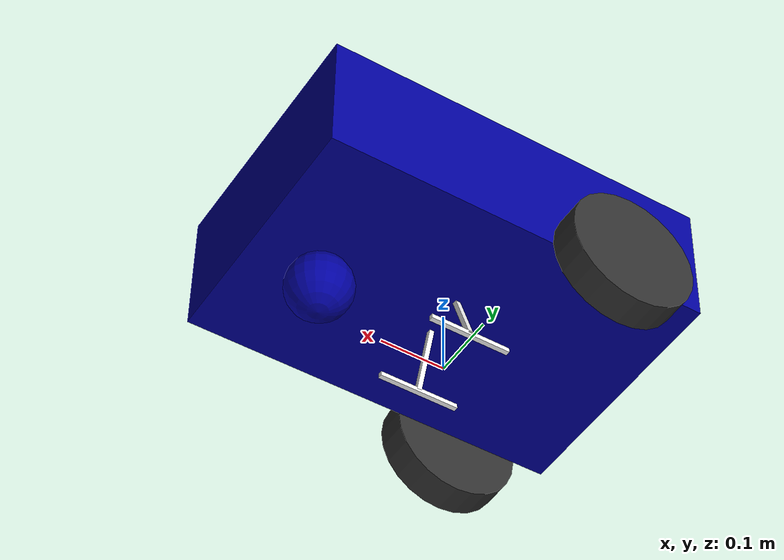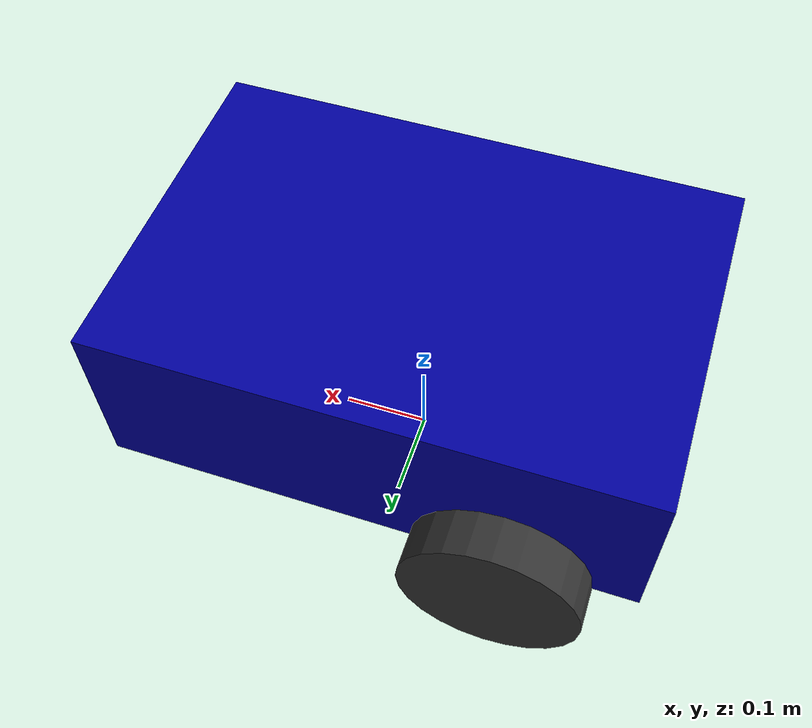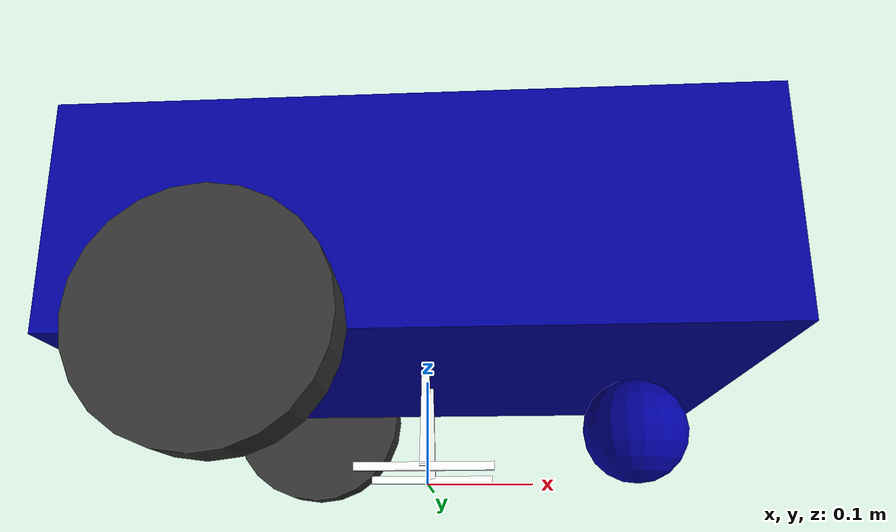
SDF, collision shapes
<?xml version="1.0"?>
<sdf version='1.9'>
  <model name='flight_robot'>

    <include merge='true'>
      <uri>model://x500_base</uri>
    </include>

    <!-- Rename the merged base_link to avoid conflicts -->
    <!-- The x500_base's base_link is now part of flight_robot -->

    <!-- Your ground robot base -->
    <link name='robot_base_footprint'>  <!-- Renamed to avoid conflict -->
      <pose>0 0 0 0 0 0</pose>  <!-- Position robot base at origin -->
      <inertial>
        <mass>6</mass>
        <inertia>
          <ixx>0.689417</ixx>
          <ixy>0</ixy>
          <ixz>0.025</ixz>
          <iyy>0.92275</iyy>
          <iyz>0</iyz>
          <izz>0.370667</izz>
        </inertia>
      </inertial>

      <!-- Base collision -->
      <collision name='base_collision'>
        <pose>0 0 0.2 0 0 0</pose>
        <geometry>
          <box>
            <size>0.6 0.4 0.2</size>
          </box>
        </geometry>
      </collision>

      <!-- Caster collision -->
      <collision name='caster_collision'>
        <pose>0.2 0 0.05 0 0 0</pose>
        <geometry>
          <sphere>
            <radius>0.05</radius>
          </sphere>
        </geometry>
        <surface>
          <friction>
            <ode>
              <mu>0.1</mu>
              <mu2>0.1</mu2>
            </ode>
          </friction>
        </surface>
      </collision>

      <!-- Visuals -->
      <visual name='base_visual'>
        <pose>0 0 0.2 0 0 0</pose>
        <geometry>
          <box>
            <size>0.6 0.4 0.2</size>
          </box>
        </geometry>
        <material>
          <diffuse>0 0 0.625 1</diffuse>
        </material>
      </visual>

      <visual name='caster_visual'>
        <pose>0.2 0 0.05 0 0 0</pose>
        <geometry>
          <sphere>
            <radius>0.05</radius>
          </sphere>
        </geometry>
        <material>
          <diffuse>0.625 0.625 0.625 1</diffuse>
        </material>
      </visual>
    </link>

    <!-- Left wheel joint and link -->
    <joint name='left_wheel_joint' type='revolute'>
      <parent>robot_base_footprint</parent>
      <child>left_wheel</child>
      <axis>
        <xyz>0 1 0</xyz>
        <limit>
          <lower>-1e16</lower>
          <upper>1e16</upper>
        </limit>
      </axis>
    </joint>

    <link name='left_wheel'>
      <pose relative_to='robot_base_footprint'>-0.15 0.225 0.1 1.5708 0 0</pose>
      <inertial>
        <mass>1</mass>
        <inertia>
          <ixx>0.010833</ixx>
          <iyy>0.010833</iyy>
          <izz>0.02</izz>
          <ixy>0</ixy>
          <ixz>0</ixz>
          <iyz>0</iyz>
        </inertia>
      </inertial>
      <collision name='collision'>
        <geometry>
          <cylinder>
            <length>0.05</length>
            <radius>0.1</radius>
          </cylinder>
        </geometry>
      </collision>
      <visual name='visual'>
        <geometry>
          <cylinder>
            <length>0.05</length>
            <radius>0.1</radius>
          </cylinder>
        </geometry>
        <material>
          <diffuse>0.2 0.2 0.2 1</diffuse>
        </material>
      </visual>
    </link>

    <!-- Right wheel joint and link -->
    <joint name='right_wheel_joint' type='revolute'>
      <parent>robot_base_footprint</parent>
      <child>right_wheel</child>
      <axis>
        <xyz>0 1 0</xyz>
        <limit>
          <lower>-1e16</lower>
          <upper>1e16</upper>
        </limit>
      </axis>
    </joint>

    <link name='right_wheel'>
      <pose relative_to='robot_base_footprint'>-0.15 -0.225 0.1 1.5708 0 0</pose>
      <inertial>
        <mass>1</mass>
        <inertia>
          <ixx>0.010833</ixx>
          <iyy>0.010833</iyy>
          <izz>0.02</izz>
          <ixy>0</ixy>
          <ixz>0</ixz>
          <iyz>0</iyz>
        </inertia>
      </inertial>
      <collision name='collision'>
        <geometry>
          <cylinder>
            <length>0.05</length>
            <radius>0.1</radius>
          </cylinder>
        </geometry>
      </collision>
      <visual name='visual'>
        <geometry>
          <cylinder>
            <length>0.05</length>
            <radius>0.1</radius>
          </cylinder>
        </geometry>
        <material>
          <diffuse>0.2 0.2 0.2 1</diffuse>
        </material>
      </visual>
    </link>

    <!-- Attach drone (x500_base's base_link) to robot base -->
    <joint name="robot_to_drone_joint" type="fixed">
      <parent>robot_base_footprint</parent>
      <child>base_link</child>  <!-- This is x500_base's base_link from merge -->
      <pose>0 0 0.4 0 0 0</pose>  <!-- Position drone 0.4m above robot base -->
    </joint>

    <!-- Diff drive for the ground robot -->
    <plugin filename="gz-sim-diff-drive-system" name="gz::sim::systems::DiffDrive">
      <left_joint>left_wheel_joint</left_joint>
      <right_joint>right_wheel_joint</right_joint>
      <wheel_separation>0.45</wheel_separation>
      <wheel_radius>0.1</wheel_radius>
      <odom_publish_frequency>50</odom_publish_frequency>
      <topic>cmd_vel</topic>
    </plugin>

    <!-- Keep x500's motor plugins (they were merged in) -->

  </model>
</sdf>

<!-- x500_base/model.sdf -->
<sdf version='1.9'>
  <model name='x500_base'>
    <pose>0 0 0.12 0 0 0</pose>
    <self_collide>false</self_collide>
    <static>false</static>
    <link name="base_link">
      <inertial>
        <mass>1.0</mass>
        <inertia>
          <ixx>0.005416666666666667</ixx>
          <ixy>0</ixy>
          <ixz>0</ixz>
          <iyy>0.005416666666666667</iyy>
          <iyz>0</iyz>
          <izz>0.010000000000000002</izz>
        </inertia>
      </inertial>
      <gravity>true</gravity>
      <velocity_decay/>
      <visual name="base_link_visual">
        <pose>0 0 0.0125 0 0 3.141592654</pose>
        <geometry>
          <mesh>
            <scale>0.5 0.5 0.5</scale>
            <uri>model://x500_base/meshes/NXP-HGD-CF.dae</uri>
          </mesh>
        </geometry>
      </visual>
      <visual name="5010_motor_base_0">
        <pose>0.087 0.087 0.016 0 0 -0.45</pose>
        <geometry>
          <mesh>
            <scale>0.5 0.5 0.5</scale>
            <uri>model://x500_base/meshes/5010Base.dae</uri>
          </mesh>
        </geometry>
      </visual>
      <visual name="5010_motor_base_1">
        <pose>-0.087 0.087 0.016 0 0 -0.45</pose>
        <geometry>
          <mesh>
            <scale>0.5 0.5 0.5</scale>
            <uri>model://x500_base/meshes/5010Base.dae</uri>
          </mesh>
        </geometry>
      </visual>
      <visual name="5010_motor_base_2">
        <pose>0.087 -0.087 0.016 0 0 -0.45</pose>
        <geometry>
          <mesh>
            <scale>0.5 0.5 0.5</scale>
            <uri>model://x500_base/meshes/5010Base.dae</uri>
          </mesh>
        </geometry>
      </visual>
      <visual name="5010_motor_base_3">
        <pose>-0.087 -0.087 0.016 0 0 -0.45</pose>
        <geometry>
          <mesh>
            <scale>0.5 0.5 0.5</scale>
            <uri>model://x500_base/meshes/5010Base.dae</uri>
          </mesh>
        </geometry>
      </visual>
      <visual name="NXP_FMUK66_FRONT">
        <pose>0.0235 0.0005 0.0215 1 0 1.57</pose>
        <cast_shadows>false</cast_shadows>
        <geometry>
          <plane>
            <normal>0 0 1</normal>
            <size>0.0065 0.0035</size>
          </plane>
        </geometry>
        <material>
          <diffuse>1.0 1.0 1.0</diffuse>
          <specular>1.0 1.0 1.0</specular>
          <pbr>
            <metal>
              <albedo_map>model://x500_base/materials/textures/nxp.png</albedo_map>
            </metal>
          </pbr>
        </material>
      </visual>
      <visual name="NXP_FMUK66_TOP">
        <pose>-0.0115 0 0.02575 0 0 -1.57</pose>
        <cast_shadows>false</cast_shadows>
        <geometry>
          <plane>
            <normal>0 0 1</normal>
            <size>0.0065 0.0035</size>
          </plane>
        </geometry>
        <material>
          <diffuse>1.0 1.0 1.0</diffuse>
          <specular>1.0 1.0 1.0</specular>
          <pbr>
            <metal>
              <albedo_map>model://x500_base/materials/textures/nxp.png</albedo_map>
            </metal>
          </pbr>
        </material>
      </visual>
      <visual name="RDDRONE_FMUK66_TOP">
        <pose>-0.015 0 0.02575 0 0 -1.57</pose>
        <cast_shadows>false</cast_shadows>
        <geometry>
          <plane>
            <normal>0 0 1</normal>
            <size>0.016 0.0017</size>
          </plane>
        </geometry>
        <material>
          <diffuse>1.0 1.0 1.0</diffuse>
          <specular>1.0 1.0 1.0</specular>
          <pbr>
            <metal>
              <albedo_map>model://x500_base/materials/textures/rd.png</albedo_map>
            </metal>
          </pbr>
        </material>
      </visual>
      <collision name="base_link_collision_0">
        <pose>0 0 0.0035 0 0 0</pose>
        <geometry>
          <box>
            <size>0.17677669529663686 0.17677669529663686 0.025</size>
          </box>
        </geometry>
        <surface>
          <contact>
            <ode>
              <min_depth>0.001</min_depth>
              <max_vel>0</max_vel>
            </ode>
          </contact>
          <friction>
            <ode/>
          </friction>
        </surface>
      </collision>
      <collision name="base_link_collision_1">
        <pose>0 -0.049 -0.0615 -0.35 0 0</pose>
        <geometry>
          <box>
            <size>0.0075 0.0075 0.105</size>
          </box>
        </geometry>
        <surface>
          <contact>
            <ode>
              <min_depth>0.001</min_depth>
              <max_vel>0</max_vel>
            </ode>
          </contact>
          <friction>
            <ode/>
          </friction>
        </surface>
      </collision>
      <collision name="base_link_collision_2">
        <pose>0 0.049 -0.0615 0.35 0 0</pose>
        <geometry>
          <box>
            <size>0.0075 0.0075 0.105</size>
          </box>
        </geometry>
        <surface>
          <contact>
            <ode>
              <min_depth>0.001</min_depth>
              <max_vel>0</max_vel>
            </ode>
          </contact>
          <friction>
            <ode/>
          </friction>
        </surface>
      </collision>
      <collision name="base_link_collision_3">
        <pose>0 -0.066 -0.10975 0 0 0</pose>
        <geometry>
          <box>
            <size>0.125 0.0075 0.0075</size>
          </box>
        </geometry>
        <surface>
          <contact>
            <ode>
              <min_depth>0.001</min_depth>
              <max_vel>0</max_vel>
            </ode>
          </contact>
          <friction>
            <ode/>
          </friction>
        </surface>
      </collision>
      <collision name="base_link_collision_4">
        <pose>0 0.066 -0.10975 0 0 0</pose>
        <geometry>
          <box>
            <size>0.125 0.0075 0.0075</size>
          </box>
        </geometry>
        <surface>
          <contact>
            <ode>
              <min_depth>0.001</min_depth>
              <max_vel>0</max_vel>
            </ode>
          </contact>
          <friction>
            <ode/>
          </friction>
        </surface>
      </collision>
      <sensor name="air_pressure_sensor" type="air_pressure">
        <always_on>1</always_on>
        <update_rate>50</update_rate>
        <air_pressure>
          <pressure>
            <noise type="gaussian">
              <mean>0</mean>
              <stddev>0.01</stddev>
            </noise>
          </pressure>
        </air_pressure>
      </sensor>
      <sensor name="imu_sensor" type="imu">
        <always_on>1</always_on>
        <update_rate>250</update_rate>
        <imu>
          <angular_velocity>
            <x>
              <noise type="gaussian">
                <mean>0</mean>
                <stddev>0.00018665</stddev>
                <dynamic_bias_stddev>3.8785e-05</dynamic_bias_stddev>
                <dynamic_bias_correlation_time>1000</dynamic_bias_correlation_time>
              </noise>
            </x>
            <y>
              <noise type="gaussian">
                <mean>0</mean>
                <stddev>0.00018665</stddev>
                <dynamic_bias_stddev>3.8785e-05</dynamic_bias_stddev>
                <dynamic_bias_correlation_time>1000</dynamic_bias_correlation_time>
              </noise>
            </y>
            <z>
              <noise type="gaussian">
                <mean>0</mean>
                <stddev>0.00018665</stddev>
                <dynamic_bias_stddev>3.8785e-05</dynamic_bias_stddev>
                <dynamic_bias_correlation_time>1000</dynamic_bias_correlation_time>
              </noise>
            </z>
          </angular_velocity>
          <linear_acceleration>
            <x>
              <noise type="gaussian">
                <mean>0</mean>
                <stddev>0.00186</stddev>
                <dynamic_bias_stddev>0.006</dynamic_bias_stddev>
                <dynamic_bias_correlation_time>300</dynamic_bias_correlation_time>
              </noise>
            </x>
            <y>
              <noise type="gaussian">
                <mean>0</mean>
                <stddev>0.00186</stddev>
                <dynamic_bias_stddev>0.006</dynamic_bias_stddev>
                <dynamic_bias_correlation_time>300</dynamic_bias_correlation_time>
              </noise>
            </y>
            <z>
              <noise type="gaussian">
                <mean>0</mean>
                <stddev>0.00186</stddev>
                <dynamic_bias_stddev>0.006</dynamic_bias_stddev>
                <dynamic_bias_correlation_time>300</dynamic_bias_correlation_time>
              </noise>
            </z>
          </linear_acceleration>
        </imu>
      </sensor>
      <sensor name="navsat_sensor" type="navsat">
        <always_on>1</always_on>
        <update_rate>30</update_rate>
      </sensor>
    </link>
    <link name="rotor_0">
      <gravity>true</gravity>
      <self_collide>false</self_collide>
      <velocity_decay/>
      <pose>0.087 -0.087 0.03 0 0 0</pose>
      <inertial>
          <mass>0.008038461538461538</mass>
          <inertia>
            <ixx>9.616227620998331e-08</ixx>
            <iyy>6.528962922925001e-06</iyy>
            <izz>6.62464558678501e-06</izz>
          </inertia>
        </inertial>
      <visual name="rotor_0_visual">
        <pose>-0.011 -0.07319230769230769 -0.008 0 0 0</pose>
        <geometry>
          <mesh>
            <scale>0.4230769230769231 0.4230769230769231 0.4230769230769231</scale>
            <uri>model://x500_base/meshes/1345_prop_ccw.stl</uri>
          </mesh>
        </geometry>
        <material>
          <script>
            <name>Gazebo/DarkGrey</name>
            <uri>file://media/materials/scripts/gazebo.material</uri>
          </script>
        </material>
      </visual>
      <visual name="rotor_0_visual_motor_bell">
        <pose>0 0 -0.016 0 0 0</pose>
        <geometry>
          <mesh>
            <scale>0.5 0.5 0.5</scale>
            <uri>model://x500_base/meshes/5010Bell.dae</uri>
          </mesh>
        </geometry>
      </visual>
      <collision name="rotor_0_collision">
        <pose>0 0 0 0 0 0 </pose>
        <geometry>
          <box>
            <size>0.1396153846153846 0.008461538461538461 0.0004230769230769231</size>
          </box>
        </geometry>
        <surface>
          <contact>
            <ode>
              <min_depth>0.001</min_depth>
              <max_vel>0</max_vel>
            </ode>
          </contact>
          <friction>
            <ode/>
          </friction>
        </surface>
      </collision>
    </link>
    <joint name="rotor_0_joint" type="revolute">
      <parent>base_link</parent>
      <child>rotor_0</child>
      <axis>
        <xyz>0 0 1</xyz>
        <limit>
          <lower>-1e+16</lower>
          <upper>1e+16</upper>
        </limit>
        <dynamics>
          <spring_reference>0</spring_reference>
          <spring_stiffness>0</spring_stiffness>
        </dynamics>
      </axis>
    </joint>
    <link name="rotor_1">
      <gravity>true</gravity>
      <self_collide>false</self_collide>
      <velocity_decay/>
      <pose>-0.087 0.087 0.03 0 0 0</pose>
      <inertial>
          <mass>0.008038461538461538</mass>
          <inertia>
            <ixx>9.616227620998331e-08</ixx>
            <iyy>6.528962922925001e-06</iyy>
            <izz>6.62464558678501e-06</izz>
          </inertia>
        </inertial>
      <visual name="rotor_1_visual">
        <pose>-0.011 -0.07319230769230769 -0.008 0 0 0</pose>
        <geometry>
          <mesh>
            <scale>0.4230769230769231 0.4230769230769231 0.4230769230769231</scale>
            <uri>model://x500_base/meshes/1345_prop_ccw.stl</uri>
          </mesh>
        </geometry>
        <material>
          <script>
            <name>Gazebo/DarkGrey</name>
            <uri>file://media/materials/scripts/gazebo.material</uri>
          </script>
        </material>
      </visual>
      <visual name="rotor_1_visual_motor_top">
        <pose>0 0 -0.016 0 0 0</pose>
        <geometry>
          <mesh>
            <scale>0.5 0.5 0.5</scale>
            <uri>model://x500_base/meshes/5010Bell.dae</uri>
          </mesh>
        </geometry>
      </visual>
      <collision name="rotor_1_collision">
        <pose>0 0 0 0 0 0 </pose>
        <geometry>
          <box>
            <size>0.1396153846153846 0.008461538461538461 0.0004230769230769231</size>
          </box>
        </geometry>
        <surface>
          <contact>
            <ode>
              <min_depth>0.001</min_depth>
              <max_vel>0</max_vel>
            </ode>
          </contact>
          <friction>
            <ode/>
          </friction>
        </surface>
      </collision>
    </link>
    <joint name="rotor_1_joint" type="revolute">
      <parent>base_link</parent>
      <child>rotor_1</child>
      <axis>
        <xyz>0 0 1</xyz>
        <limit>
          <lower>-1e+16</lower>
          <upper>1e+16</upper>
        </limit>
        <dynamics>
          <spring_reference>0</spring_reference>
          <spring_stiffness>0</spring_stiffness>
        </dynamics>
      </axis>
    </joint>
    <link name="rotor_2">
      <gravity>true</gravity>
      <self_collide>false</self_collide>
      <velocity_decay/>
      <pose>0.087 0.087 0.03 0 0 0</pose>
      <inertial>
          <mass>0.008038461538461538</mass>
          <inertia>
            <ixx>9.616227620998331e-08</ixx>
            <iyy>6.528962922925001e-06</iyy>
            <izz>6.62464558678501e-06</izz>
          </inertia>
        </inertial>
      <visual name="rotor_2_visual">
        <pose>-0.011 -0.07319230769230769 -0.008 0 0 0</pose>
        <geometry>
          <mesh>
            <scale>0.4230769230769231 0.4230769230769231 0.4230769230769231</scale>
            <uri>model://x500_base/meshes/1345_prop_cw.stl</uri>
          </mesh>
        </geometry>
        <material>
          <script>
            <name>Gazebo/DarkGrey</name>
            <uri>file://media/materials/scripts/gazebo.material</uri>
          </script>
        </material>
      </visual>
      <visual name="rotor_2_visual_motor_top">
        <pose>0 0 -0.016 0 0 0</pose>
        <geometry>
          <mesh>
            <scale>0.5 0.5 0.5</scale>
            <uri>model://x500_base/meshes/5010Bell.dae</uri>
          </mesh>
        </geometry>
      </visual>
      <collision name="rotor_2_collision">
        <pose>0 0 0 0 0 0 </pose>
        <geometry>
          <box>
            <size>0.1396153846153846 0.008461538461538461 0.0004230769230769231</size>
          </box>
        </geometry>
        <surface>
          <contact>
            <ode>
              <min_depth>0.001</min_depth>
              <max_vel>0</max_vel>
            </ode>
          </contact>
          <friction>
            <ode/>
          </friction>
        </surface>
      </collision>
    </link>
    <joint name="rotor_2_joint" type="revolute">
      <parent>base_link</parent>
      <child>rotor_2</child>
      <axis>
        <xyz>0 0 1</xyz>
        <limit>
          <lower>-1e+16</lower>
          <upper>1e+16</upper>
        </limit>
        <dynamics>
          <spring_reference>0</spring_reference>
          <spring_stiffness>0</spring_stiffness>
        </dynamics>
      </axis>
    </joint>
    <link name="rotor_3">
      <gravity>true</gravity>
      <self_collide>false</self_collide>
      <velocity_decay/>
      <pose>-0.087 -0.087 0.03 0 0 0</pose>
      <inertial>
          <mass>0.008038461538461538</mass>
          <inertia>
            <ixx>9.616227620998331e-08</ixx>
            <iyy>6.528962922925001e-06</iyy>
            <izz>6.62464558678501e-06</izz>
          </inertia>
        </inertial>
      <visual name="rotor_3_visual">
        <pose>-0.011 -0.07319230769230769 -0.008 0 0 0</pose>
        <geometry>
          <mesh>
            <scale>0.4230769230769231 0.4230769230769231 0.4230769230769231</scale>
            <uri>model://x500_base/meshes/1345_prop_cw.stl</uri>
          </mesh>
        </geometry>
        <material>
          <script>
            <name>Gazebo/DarkGrey</name>
            <uri>file://media/materials/scripts/gazebo.material</uri>
          </script>
        </material>
      </visual>
      <visual name="rotor_3_visual_motor_top">
        <pose>0 0 -0.016 0 0 0</pose>
        <geometry>
          <mesh>
            <scale>0.5 0.5 0.5</scale>
            <uri>model://x500_base/meshes/5010Bell.dae</uri>
          </mesh>
        </geometry>
      </visual>
      <collision name="rotor_3_collision">
        <pose>0 0 0 0 0 0 </pose>
        <geometry>
          <box>
            <size>0.1396153846153846 0.008461538461538461 0.0004230769230769231</size>
          </box>
        </geometry>
        <surface>
          <contact>
            <ode>
              <min_depth>0.001</min_depth>
              <max_vel>0</max_vel>
            </ode>
          </contact>
          <friction>
            <ode/>
          </friction>
        </surface>
      </collision>
    </link>
    <joint name="rotor_3_joint" type="revolute">
      <parent>base_link</parent>
      <child>rotor_3</child>
      <axis>
        <xyz>0 0 1</xyz>
        <limit>
          <lower>-1e+16</lower>
          <upper>1e+16</upper>
        </limit>
        <dynamics>
          <spring_reference>0</spring_reference>
          <spring_stiffness>0</spring_stiffness>
        </dynamics>
      </axis>
    </joint>
  </model>
</sdf>
